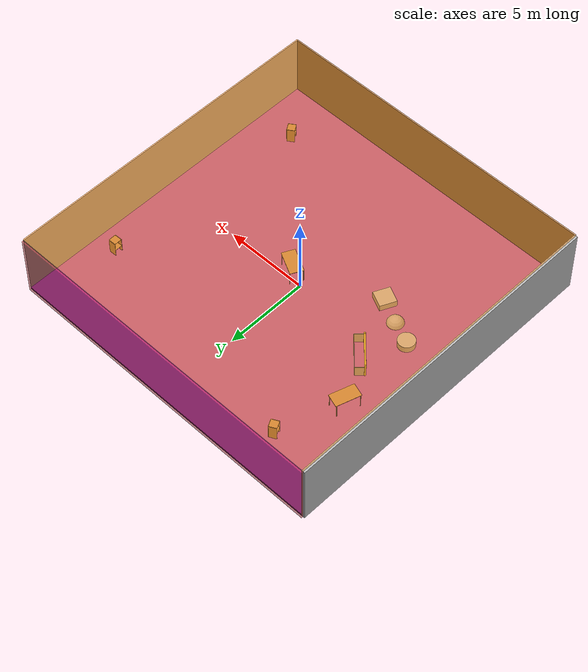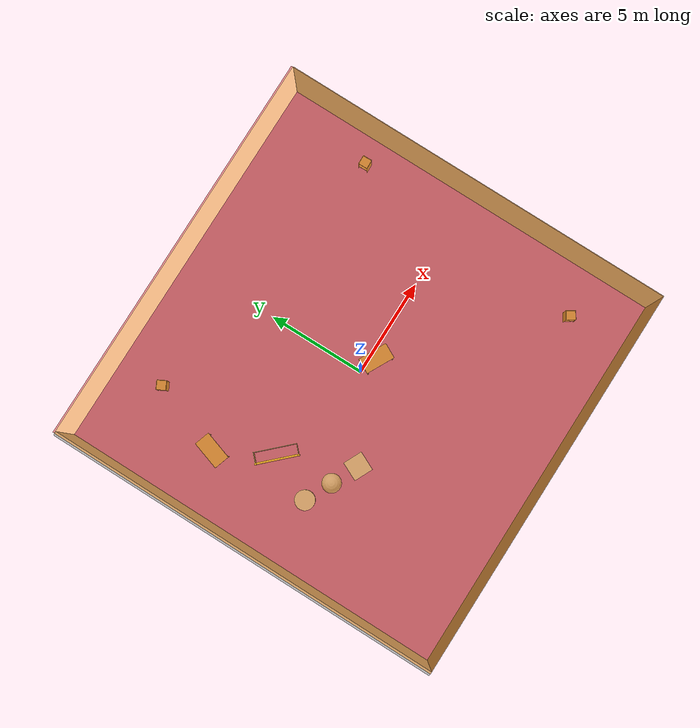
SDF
<sdf version="1.4">
 <world name="default">
  <physics type="ode">
   <max_step_size>0.001</max_step_size>
   <real_time_factor>1</real_time_factor>
   <real_time_update_rate>1000</real_time_update_rate>
   <gravity>0 0 -9.8</gravity>
  </physics>
  <scene><ambient>0.4 0.4 0.4 1</ambient><background>0.7 0.7 0.7 1</background><shadows>1</shadows></scene>
  <model name="Surrounding">
   <static>1</static>
   <link name="Ceiling">
    <collision name="Ceiling_Collision"><geometry><box><size>20 20 0.1</size></box></geometry></collision>
    <visual name="Ceiling_Visual">
     <geometry><box><size>20 20 0.1</size></box></geometry>
     <material>
      <script>
       <uri>file://media/materials/scripts/gazebo.material</uri>
       <name>Gazebo/OrangeTransparent</name>
      </script>
     </material>
    </visual>
    <pose>0 0 4.05 0 0 0</pose>
   </link>
   <link name="Wall_South">
    <collision name="Wall_South_Collision">
     <geometry><box><size>20 0 4</size></box></geometry>
     <pose>0 0 2 0 -0 0</pose>
    </collision>
    <visual name="Wall_South_Visual">
     <pose>0 0 2 0 -0 0</pose>
     <geometry><box><size>20 0 4</size></box></geometry>
     <material>
      <script><uri>file://media/materials/scripts/gazebo.material</uri><name>Gazebo/Road</name></script>
     </material>
    </visual>
    <velocity_decay><linear>0</linear><angular>0</angular></velocity_decay>
    <pose>0 -10 0 0 -0 0</pose>
   </link>
   <link name="Wall_East">
    <collision name="Wall_21_Collision">
     <geometry><box><size>20 0 4</size></box></geometry>
     <pose>0 0 2 0 -0 0</pose>
    </collision>
    <visual name="Wall_21_Visual">
     <pose>0 0 2 0 -0 0</pose>
     <geometry><box><size>20 0 4</size></box></geometry>
     <material>
      <script><uri>file://media/materials/scripts/gazebo.material</uri><name>Gazebo/CloudySky</name></script>
     </material>
    </visual>
    <velocity_decay><linear>0</linear><angular>0</angular></velocity_decay>
    <pose>10 0 0 0 -0 1.5708</pose>
   </link>
   <link name="Wall_North">
    <collision name="Wall_22_Collision">
     <geometry><box><size>20 0.2 4</size></box></geometry>
     <pose>0 0 2 0 -0 0</pose>
    </collision>
    <visual name="Wall_22_Visual">
     <pose>0 0 2 0 -0 0</pose>
     <geometry><box><size>20 0.2 4</size></box></geometry>
     <material>
      <script><uri>file://media/materials/scripts/gazebo.material</uri><name>Gazebo/RedTransparent</name></script>
     </material>
    </visual>
    <velocity_decay><linear>0</linear><angular>0</angular></velocity_decay>
    <pose>0 10 0 0 -0 0</pose>
   </link>
   <link name="Wall_West">
    <collision name="Wall_23_Collision">
     <geometry><box><size>20 0.2 4</size></box></geometry>
     <pose>0 0 2 0 -0 0</pose>
    </collision>
    <visual name="Wall_23_Visual">
     <pose>0 0 2 0 -0 0</pose>
     <geometry><box><size>20 0.2 4</size></box></geometry>
     <material>
      <script><uri>file://media/materials/scripts/gazebo.material</uri><name>Gazebo/LightOff</name></script>
     </material>
    </visual>
    <velocity_decay><linear>0</linear><angular>0</angular></velocity_decay>
    <pose>-10 0 0 0 0 -1.5708</pose>
   </link>
   <link name="Ground_link">
    <collision name="collision">
     <pose>0 0 .05 0 -0 0</pose>
     <geometry><box><size>20 20 0.1</size></box></geometry>
    </collision>
    <visual name="visual">
     <pose>0 0 .05 0 -0 0</pose>
     <geometry><box><size>20 20 0.1</size></box></geometry>
     <material>
      <script><uri>file://media/materials/scripts/gazebo.material</uri><name>Gazebo/PurpleGlow</name></script>
     </material>
    </visual>
   </link>
   <static>1</static>
  </model>
  <spherical_coordinates>
   <surface_model>EARTH_WGS84</surface_model>
   <latitude_deg>0</latitude_deg>
   <longitude_deg>0</longitude_deg>
   <elevation>0</elevation>
   <heading_deg>0</heading_deg>
  </spherical_coordinates>
  <light name="lightball_0" type="diffuse">
   <diffuse>0.8 0.8 0.8 1</diffuse>
   <specular>0.2 0.2 0.2 1</specular>
   <attenuation>
    <range>100</range>
    <constant>0.7</constant>
    <linear>0.01</linear>
    <quadratic>0.001</quadratic>
   </attenuation>
   <direction>-0.5 0.1 -0.9</direction>
   <pose>8.90089250403 -6.37538115196 3.65500560996 0 0 0</pose>
  </light>
  <light name="lightball_1" type="diffuse">
   <diffuse>0.8 0.8 0.8 1</diffuse>
   <specular>0.2 0.2 0.2 1</specular>
   <attenuation>
    <range>100</range>
    <constant>0.7</constant>
    <linear>0.01</linear>
    <quadratic>0.001</quadratic>
   </attenuation>
   <direction>-0.5 0.1 -0.9</direction>
   <pose>-0.494451250285 -7.08716558047 1.35653756112 0 0 0</pose>
  </light>
  <light name="lightball_2" type="diffuse">
   <diffuse>0.8 0.8 0.8 1</diffuse>
   <specular>0.2 0.2 0.2 1</specular>
   <attenuation>
    <range>100</range>
    <constant>0.7</constant>
    <linear>0.01</linear>
    <quadratic>0.001</quadratic>
   </attenuation>
   <direction>-0.5 0.1 -0.9</direction>
   <pose>-9.90726067389 6.45949338375 1.33539096433 0 0 0</pose>
  </light>
  <light name="lightball_3" type="diffuse">
   <diffuse>0.8 0.8 0.8 1</diffuse>
   <specular>0.2 0.2 0.2 1</specular>
   <attenuation>
    <range>100</range>
    <constant>0.7</constant>
    <linear>0.01</linear>
    <quadratic>0.001</quadratic>
   </attenuation>
   <direction>-0.5 0.1 -0.9</direction>
   <pose>0.59494385819 4.71363548566 2.66142654802 0 0 0</pose>
  </light>
  <light name="lightball_4" type="diffuse">
   <diffuse>0.8 0.8 0.8 1</diffuse>
   <specular>0.2 0.2 0.2 1</specular>
   <attenuation>
    <range>100</range>
    <constant>0.7</constant>
    <linear>0.01</linear>
    <quadratic>0.001</quadratic>
   </attenuation>
   <direction>-0.5 0.1 -0.9</direction>
   <pose>2.5147708679 7.98171017374 0.609926574651 0 0 0</pose>
  </light>
  <light name="lightball_5" type="diffuse">
   <diffuse>0.8 0.8 0.8 1</diffuse>
   <specular>0.2 0.2 0.2 1</specular>
   <attenuation>
    <range>100</range>
    <constant>0.7</constant>
    <linear>0.01</linear>
    <quadratic>0.001</quadratic>
   </attenuation>
   <direction>-0.5 0.1 -0.9</direction>
   <pose>0.326951462575 4.82137316219 1.29523576918 0 0 0</pose>
  </light>
  <light name="lightball_6" type="diffuse">
   <diffuse>0.8 0.8 0.8 1</diffuse>
   <specular>0.2 0.2 0.2 1</specular>
   <attenuation>
    <range>100</range>
    <constant>0.7</constant>
    <linear>0.01</linear>
    <quadratic>0.001</quadratic>
   </attenuation>
   <direction>-0.5 0.1 -0.9</direction>
   <pose>2.24420391448 7.48500054119 0.764451633738 0 0 0</pose>
  </light>
  <light name="lightball_7" type="diffuse">
   <diffuse>0.8 0.8 0.8 1</diffuse>
   <specular>0.2 0.2 0.2 1</specular>
   <attenuation>
    <range>100</range>
    <constant>0.7</constant>
    <linear>0.01</linear>
    <quadratic>0.001</quadratic>
   </attenuation>
   <direction>-0.5 0.1 -0.9</direction>
   <pose>8.34226909666 -5.56920899537 2.77804284215 0 0 0</pose>
  </light>
  <light name="lightball_8" type="diffuse">
   <diffuse>0.8 0.8 0.8 1</diffuse>
   <specular>0.2 0.2 0.2 1</specular>
   <attenuation>
    <range>100</range>
    <constant>0.7</constant>
    <linear>0.01</linear>
    <quadratic>0.001</quadratic>
   </attenuation>
   <direction>-0.5 0.1 -0.9</direction>
   <pose>-6.21657346828 -4.57137260009 2.70010381465 0 0 0</pose>
  </light>
  <light name="lightball_9" type="diffuse">
   <diffuse>0.8 0.8 0.8 1</diffuse>
   <specular>0.2 0.2 0.2 1</specular>
   <attenuation>
    <range>100</range>
    <constant>0.7</constant>
    <linear>0.01</linear>
    <quadratic>0.001</quadratic>
   </attenuation>
   <direction>-0.5 0.1 -0.9</direction>
   <pose>-4.37291997984 -4.27602059621 3.32939480612 0 0 0</pose>
  </light>
  <light name="lightball_10" type="diffuse">
   <diffuse>0.8 0.8 0.8 1</diffuse>
   <specular>0.2 0.2 0.2 1</specular>
   <attenuation>
    <range>100</range>
    <constant>0.7</constant>
    <linear>0.01</linear>
    <quadratic>0.001</quadratic>
   </attenuation>
   <direction>-0.5 0.1 -0.9</direction>
   <pose>1.49471860355 6.13126047762 2.24842242628 0 0 0</pose>
  </light>
  <light name="lightball_11" type="diffuse">
   <diffuse>0.8 0.8 0.8 1</diffuse>
   <specular>0.2 0.2 0.2 1</specular>
   <attenuation>
    <range>100</range>
    <constant>0.7</constant>
    <linear>0.01</linear>
    <quadratic>0.001</quadratic>
   </attenuation>
   <direction>-0.5 0.1 -0.9</direction>
   <pose>-1.33254259976 8.14935279919 2.60126501297 0 0 0</pose>
  </light>
  <include><uri>model://table</uri><pose>-6.98236300694 3.90428515696 0 0 0 1.25928820565</pose></include>
  <include>
   <uri>model://textured_shapes</uri>
   <pose>-5.2668438911 -1.69875162829 0 0 0 1.12903484982</pose>
  </include>
  <include>
   <uri>model://robocup_3Dsim_goal</uri>
   <pose>-5.69529439572 1.07816856966 0 0 0 0.767963033677</pose>
  </include>
  <include><uri>model://cabinet</uri><pose>-5.66073844855 7.61616626667 0 0 0 0.474627063758</pose></include>
  <include><uri>model://table</uri><pose>0.878921239241 -0.345729256396 0 0 0 2.66483043692</pose></include>
  <include><uri>model://cabinet</uri><pose>7.58225127528 -7.08678882115 0 0 0 0.584412774958</pose></include>
  <include><uri>model://cabinet</uri><pose>8.62190673891 5.18220277887 0 0 0 0.0261360710096</pose></include>
 </world>
</sdf>

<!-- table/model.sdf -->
<sdf version="1.5">
  <model name="table">
    <static>true</static>
    <link name="link">
      <collision name="surface">
        <pose>0 0 1.0 0 0 0</pose>
        <geometry>
          <box>
            <size>1.5 0.8 0.03</size>
          </box>
        </geometry>
        <surface>
          <friction>
            <ode>
              <mu>0.6</mu>
              <mu2>0.6</mu2>
            </ode>
          </friction>
        </surface>
      </collision>
      <visual name="visual1">
        <pose>0 0 1.0 0 0 0</pose>
        <geometry>
          <box>
            <size>1.5 0.8 0.03</size>
          </box>
        </geometry>
        <material>
          <script>
            <uri>model://media/materials/scripts/gazebo.material</uri>
            <name>Gazebo/Wood</name>
          </script>
        </material>
      </visual>
      <collision name="front_left_leg">
        <pose>0.68 0.38 0.5 0 0 0</pose>
        <geometry>
          <cylinder>
            <radius>0.02</radius>
            <length>1.0</length>
          </cylinder>
        </geometry>
      </collision>
      <visual name="front_left_leg">
        <pose>0.68 0.38 0.5 0 0 0</pose>
        <geometry>
          <cylinder>
            <radius>0.02</radius>
            <length>1.0</length>
          </cylinder>
        </geometry>
        <material>
          <script>
            <uri>model://media/materials/scripts/gazebo.material</uri>
            <name>Gazebo/Grey</name>
          </script>
        </material>
      </visual>
      <collision name="front_right_leg">
        <pose>0.68 -0.38 0.5 0 0 0</pose>
        <geometry>
          <cylinder>
            <radius>0.02</radius>
            <length>1.0</length>
          </cylinder>
        </geometry>
      </collision>
      <visual name="front_right_leg">
        <pose>0.68 -0.38 0.5 0 0 0</pose>
        <geometry>
          <cylinder>
            <radius>0.02</radius>
            <length>1.0</length>
          </cylinder>
        </geometry>
        <material>
          <script>
            <uri>model://media/materials/scripts/gazebo.material</uri>
            <name>Gazebo/Grey</name>
          </script>
        </material>
      </visual>
      <collision name="back_right_leg">
        <pose>-0.68 -0.38 0.5 0 0 0</pose>
        <geometry>
          <cylinder>
            <radius>0.02</radius>
            <length>1.0</length>
          </cylinder>
        </geometry>
      </collision>
      <visual name="back_right_leg">
        <pose>-0.68 -0.38 0.5 0 0 0</pose>
        <geometry>
          <cylinder>
            <radius>0.02</radius>
            <length>1.0</length>
          </cylinder>
        </geometry>
        <material>
          <script>
            <uri>model://media/materials/scripts/gazebo.material</uri>
            <name>Gazebo/Grey</name>
          </script>
        </material>
      </visual>
      <collision name="back_left_leg">
        <pose>-0.68 0.38 0.5 0 0 0</pose>
        <geometry>
          <cylinder>
            <radius>0.02</radius>
            <length>1.0</length>
          </cylinder>
        </geometry>
      </collision>
      <visual name="back_left_leg">
        <pose>-0.68 0.38 0.5 0 0 0</pose>
        <geometry>
          <cylinder>
            <radius>0.02</radius>
            <length>1.0</length>
          </cylinder>
        </geometry>
        <material>
          <script>
            <uri>model://media/materials/scripts/gazebo.material</uri>
            <name>Gazebo/Grey</name>
          </script>
        </material>
      </visual>
    </link>
  </model>
</sdf>

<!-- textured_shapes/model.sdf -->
<sdf version="1.6">
  <model name="textured_shapes">
    <pose>0 0 0.5 0 0 0</pose>
    <link name="box">
      <pose>0 -1.5 0 0 0 0</pose>
      <collision name="collision">
        <geometry>
          <box>
            <size>1 1 1</size>
          </box>
        </geometry>
      </collision>
      <visual name="visual">
        <geometry>
          <box>
            <size>1 1 1</size>
          </box>
        </geometry>
        <material>
          <script>
            <uri>model://../model_source/models/textured_shapes/materials/scripts</uri>
            <uri>model://../model_source/models/textured_shapes/materials/textures</uri>
            <name>TexturedShape/Squares</name>
          </script>
        </material>
      </visual>
    </link>
    <link name="sphere">
      <collision name="collision">
        <geometry>
          <sphere>
            <radius>0.5</radius>
          </sphere>
        </geometry>
      </collision>
      <visual name="visual">
        <geometry>
          <sphere>
            <radius>0.5</radius>
          </sphere>
        </geometry>
        <material>
          <script>
            <uri>model://../model_source/models/textured_shapes/materials/scripts</uri>
            <uri>model://../model_source/models/textured_shapes/materials/textures</uri>
            <name>TexturedShape/Squares</name>
          </script>
        </material>
      </visual>
    </link>
    <link name="cylinder">
      <pose>0 1.5 0 0 0 0</pose>
      <collision name="collision">
        <geometry>
          <cylinder>
            <radius>0.5</radius>
            <length>1</length>
          </cylinder>
        </geometry>
      </collision>
      <visual name="visual">
        <geometry>
          <cylinder>
            <radius>0.5</radius>
            <length>1</length>
          </cylinder>
        </geometry>
        <material>
          <script>
            <uri>model://../model_source/models/textured_shapes/materials/scripts</uri>
            <uri>model://../model_source/models/textured_shapes/materials/textures</uri>
            <name>TexturedShape/Squares</name>
          </script>
        </material>
      </visual>
    </link>
  </model>
</sdf>

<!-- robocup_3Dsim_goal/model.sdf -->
<sdf version="1.5">
  <model name="robocup_3d_goal">
    <static>true</static>
    <link name="left_post">
      <pose>0 1.05 0.45 0 0 0</pose>
      <collision name="collision">
        <geometry>
          <cylinder>
            <radius>0.05</radius>
            <length>0.9</length>
          </cylinder>
        </geometry>
      </collision>
      <visual name="visual">
        <geometry>
          <cylinder>
            <radius>0.05</radius>
            <length>0.9</length>
          </cylinder>
        </geometry>
        <material>
          <script>
            <uri>file://media/materials/scripts/gazebo.material</uri>
            <name>Gazebo/ZincYellow</name>
          </script>
        </material>
      </visual>
    </link>
    <link name="left_support_horiz_lower">
      <pose>0.30 1.05 0.01 0 0 0</pose>
      <collision name="collision">
        <geometry>
          <box>
            <size>0.50 0.02 0.02</size>
          </box>
        </geometry>
      </collision>
      <visual name="visual">
        <geometry>
          <box>
            <size>0.50 0.02 0.02</size>
          </box>
        </geometry>
        <material>
          <script>
            <uri>file://media/materials/scripts/gazebo.material</uri>
            <name>Gazebo/White</name>
          </script>
        </material>
      </visual>
    </link>
    <link name="left_support_horiz_upper">
      <pose>0.30 1.05 0.79 0 0 0</pose>
      <collision name="collision">
        <geometry>
          <box>
            <size>0.50 0.02 0.02</size>
          </box>
        </geometry>
      </collision>
      <visual name="visual">
        <geometry>
          <box>
            <size>0.50 0.02 0.02</size>
          </box>
        </geometry>
        <material>
          <script>
            <uri>file://media/materials/scripts/gazebo.material</uri>
            <name>Gazebo/White</name>
          </script>
        </material>
      </visual>
    </link>
    <link name="left_support_vertical">
      <pose>0.56 1.05 0.4 0 1.5708 0</pose>
      <collision name="collision">
        <geometry>
          <box>
            <size>0.80 0.02 0.02</size>
          </box>
        </geometry>
      </collision>
      <visual name="visual">
        <geometry>
          <box>
            <size>0.80 0.02 0.02</size>
          </box>
        </geometry>
        <material>
          <script>
            <uri>file://media/materials/scripts/gazebo.material</uri>
            <name>Gazebo/White</name>
          </script>
        </material>
      </visual>
    </link>
    <link name="right_support_horiz_lower">
      <pose>0.30 -1.05 0.01 0 0 0</pose>
      <collision name="collision">
        <geometry>
          <box>
            <size>0.50 0.02 0.02</size>
          </box>
        </geometry>
      </collision>
      <visual name="visual">
        <geometry>
          <box>
            <size>0.50 0.02 0.02</size>
          </box>
        </geometry>
        <material>
          <script>
            <uri>file://media/materials/scripts/gazebo.material</uri>
            <name>Gazebo/White</name>
          </script>
        </material>
      </visual>
    </link>
    <link name="right_support_horiz_upper">
      <pose>0.30 -1.05 0.79 0 0 0</pose>
      <collision name="collision">
        <geometry>
          <box>
            <size>0.50 0.02 0.02</size>
          </box>
        </geometry>
      </collision>
      <visual name="visual">
        <geometry>
          <box>
            <size>0.50 0.02 0.02</size>
          </box>
        </geometry>
        <material>
          <script>
            <uri>file://media/materials/scripts/gazebo.material</uri>
            <name>Gazebo/White</name>
          </script>
        </material>
      </visual>
    </link>
    <link name="right_support_vertical">
      <pose>0.56 -1.05 0.4 0 1.5708 0</pose>
      <collision name="collision">
        <geometry>
          <box>
            <size>0.80 0.02 0.02</size>
          </box>
        </geometry>
      </collision>
      <visual name="visual">
        <geometry>
          <box>
            <size>0.80 0.02 0.02</size>
          </box>
        </geometry>
        <material>
          <script>
            <uri>file://media/materials/scripts/gazebo.material</uri>
            <name>Gazebo/White</name>
          </script>
        </material>
      </visual>
    </link>
    <link name="center_support_horiz_lower">
      <pose>0.56 0 0.01 0 1.5708 0</pose>
      <collision name="collision">
        <geometry>
          <box>
            <size>0.02 2.08 0.02</size>
          </box>
        </geometry>
      </collision>
      <visual name="visual">
        <geometry>
          <box>
            <size>0.02 2.08 0.02</size>
          </box>
        </geometry>
        <material>
          <script>
            <uri>file://media/materials/scripts/gazebo.material</uri>
            <name>Gazebo/White</name>
          </script>
        </material>
      </visual>
    </link>
    <link name="center_support_horiz_upper">
      <pose>0.56 0 0.79 0 1.5708 0</pose>
      <collision name="collision">
        <geometry>
          <box>
            <size>0.02 2.08 0.02</size>
          </box>
        </geometry>
      </collision>
      <visual name="visual">
        <geometry>
          <box>
            <size>0.02 2.08 0.02</size>
          </box>
        </geometry>
        <material>
          <script>
            <uri>file://media/materials/scripts/gazebo.material</uri>
            <name>Gazebo/White</name>
          </script>
        </material>
      </visual>
    </link>
    <link name="right_post">
      <pose>0 -1.05 0.45 0 0 0</pose>
      <collision name="collision">
        <geometry>
          <cylinder>
            <radius>0.05</radius>
            <length>0.9</length>
          </cylinder>
        </geometry>
      </collision>
      <visual name="visual">
        <geometry>
          <cylinder>
            <radius>0.05</radius>
            <length>0.9</length>
          </cylinder>
        </geometry>
        <material>
          <script>
            <uri>file://media/materials/scripts/gazebo.material</uri>
            <name>Gazebo/ZincYellow</name>
          </script>
        </material>
      </visual>
    </link>
    <link name="crossbar">
      <pose>0 0 0.85 1.57 1.57 0</pose>
      <collision name="collision">
        <geometry>
          <cylinder>
            <radius>0.05</radius>
            <length>2.0</length>
          </cylinder>
        </geometry>
      </collision>
      <visual name="visual">
        <geometry>
          <cylinder>
            <radius>0.05</radius>
            <length>2.0</length>
          </cylinder>
        </geometry>
        <material>
          <script>
            <uri>file://media/materials/scripts/gazebo.material</uri>
            <name>Gazebo/ZincYellow</name>
          </script>
        </material>
      </visual>
    </link>
    <link name="center_net">
      <pose>0.56 0 0.40 0 0 0</pose>
      <collision name="collision">
        <geometry>
          <box>
            <size>0.01 2.1 0.80</size>
          </box>
        </geometry>
      </collision>
      <visual name="visual">
        <geometry>
          <box>
            <size>0.01 2.1 0.80</size>
          </box>
        </geometry>
        <material>
          <script>
            <uri>model://../model_source/models/robocup09_spl_field/materials/scripts/</uri>
            <uri>model://../model_source/models/robocup09_spl_field/materials/textures/</uri>
            <name>RoboCup/Net</name>
          </script>
        </material>
      </visual>
    </link>
    <link name="left_net">
      <pose>0.30 1.05 0.40 0 0 0</pose>
      <collision name="collision">
        <geometry>
          <box>
            <size>0.50 0.01 0.76</size>
          </box>
        </geometry>
      </collision>
      <visual name="visual">
        <geometry>
          <box>
            <size>0.50 0.01 0.76</size>
          </box>
        </geometry>
        <material>
          <script>
            <uri>model://../model_source/models/robocup09_spl_field/materials/scripts/</uri>
            <uri>model://../model_source/models/robocup09_spl_field/materials/textures/</uri>
            <name>RoboCup/Net</name>
          </script>
        </material>
      </visual>
    </link>
    <link name="right_net">
      <pose>0.30 -1.05 0.40 0 0 0</pose>
      <collision name="collision">
        <geometry>
          <box>
            <size>0.50 0.01 0.76</size>
          </box>
        </geometry>
      </collision>
      <visual name="visual">
        <geometry>
          <box>
            <size>0.50 0.01 0.76</size>
          </box>
        </geometry>
        <material>
          <script>
            <uri>model://../model_source/models/robocup09_spl_field/materials/scripts/</uri>
            <uri>model://../model_source/models/robocup09_spl_field/materials/textures/</uri>
            <name>RoboCup/Net</name>
          </script>
        </material>
      </visual>
    </link>
  </model>
</sdf>

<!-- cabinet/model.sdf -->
<sdf version="1.5">
  <model name="cabinet">
    <static>true</static>
    <link name="cabinet_bottom_plate">
      <inertial>
        <pose>0 0 -1 0 0 0</pose>
        <inertia>
          <ixx>2.050000</ixx>
          <ixy>0</ixy>
          <ixz>0</ixz>
          <iyy>2.050000</iyy>
          <iyz>0</iyz>
          <izz>2.050000</izz>
        </inertia>
        <mass>25.000000</mass>
      </inertial>
      <collision name="cabinet_bottom_plate_geom">
        <pose>0 0 0.010000 0 0 0</pose>
        <geometry>
          <box>
            <size>0.450000 0.450000 0.020000</size>
          </box>
        </geometry>
      </collision>
      <visual name="cabinet_bottom_plate_geom_visual">
        <pose>0 0 0.010000 0 0 0</pose>
        <geometry>
          <box>
            <size>0.450000 0.450000 0.020000</size>
          </box>
        </geometry>
        <material>
          <script>
            <uri>model://media/materials/scripts/gazebo.material</uri>
            <name>Gazebo/Wood</name>
          </script>
        </material>
      </visual>
      <collision name="cabinet_bottom_plate_geom_cabinet_back_plate">
        <pose>0.235000 0 0.510000 0 0 0</pose>
        <geometry>
          <box>
            <size>0.020000 0.450000 1.020000</size>
          </box>
        </geometry>
      </collision>
      <visual name="cabinet_bottom_plate_geom_cabinet_back_plate_visual">
        <pose>0.235000 0 0.510000 0 0 0</pose>
        <geometry>
          <box>
            <size>0.020000 0.450000 1.020000</size>
          </box>
        </geometry>
        <material>
          <script>
            <uri>model://media/materials/scripts/gazebo.material</uri>
            <name>Gazebo/Wood</name>
          </script>
        </material>
      </visual>
      <collision name="cabinet_bottom_plate_geom_cabinet_left_plate">
        <pose>0 0.235000 0.510000 0 0 0</pose>
        <geometry>
          <box>
            <size>0.450000 0.020000 1.020000</size>
          </box>
        </geometry>
      </collision>
      <visual name="cabinet_bottom_plate_geom_cabinet_left_plate_visual">
        <pose>0 0.235000 0.510000 0 0 0</pose>
        <geometry>
          <box>
            <size>0.450000 0.020000 1.020000</size>
          </box>
        </geometry>
        <material>
          <script>
            <uri>model://media/materials/scripts/gazebo.material</uri>
            <name>Gazebo/Wood</name>
          </script>
        </material>
      </visual>
      <collision name="cabinet_bottom_plate_geom_cabinet_middle_plate">
        <pose>0 0 0.510000 0 0 0</pose>
        <geometry>
          <box>
            <size>0.450000 0.450000 0.020000</size>
          </box>
        </geometry>
      </collision>
      <visual name="cabinet_bottom_plate_geom_cabinet_middle_plate_visual">
        <pose>0 0 0.510000 0 0 0</pose>
        <geometry>
          <box>
            <size>0.450000 0.450000 0.020000</size>
          </box>
        </geometry>
        <material>
          <script>
            <uri>model://media/materials/scripts/gazebo.material</uri>
            <name>Gazebo/Wood</name>
          </script>
        </material>
      </visual>
      <collision name="cabinet_bottom_plate_geom_cabinet_right_plate">
        <pose>0 -0.235000 0.510000 0 0 0</pose>
        <geometry>
          <box>
            <size>0.450000 0.020000 1.020000</size>
          </box>
        </geometry>
      </collision>
      <visual name="cabinet_bottom_plate_geom_cabinet_right_plate_visual">
        <pose>0 -0.235000 0.510000 0 0 0</pose>
        <geometry>
          <box>
            <size>0.450000 0.020000 1.020000</size>
          </box>
        </geometry>
        <material>
          <script>
            <uri>model://media/materials/scripts/gazebo.material</uri>
            <name>Gazebo/Wood</name>
          </script>
        </material>
      </visual>
      <collision name="cabinet_bottom_plate_geom_cabinet_top_plate">
        <pose>0 0 1.010000 0 0 0</pose>
        <geometry>
          <box>
            <size>0.450000 0.450000 0.020000</size>
          </box>
        </geometry>
      </collision>
      <visual name="cabinet_bottom_plate_geom_cabinet_top_plate_visual">
        <pose>0 0 1.010000 0 0 0</pose>
        <geometry>
          <box>
            <size>0.450000 0.450000 0.020000</size>
          </box>
        </geometry>
        <material>
          <script>
            <uri>model://media/materials/scripts/gazebo.material</uri>
            <name>Gazebo/Wood</name>
          </script>
        </material>
      </visual>
    </link>
  </model>
</sdf>
